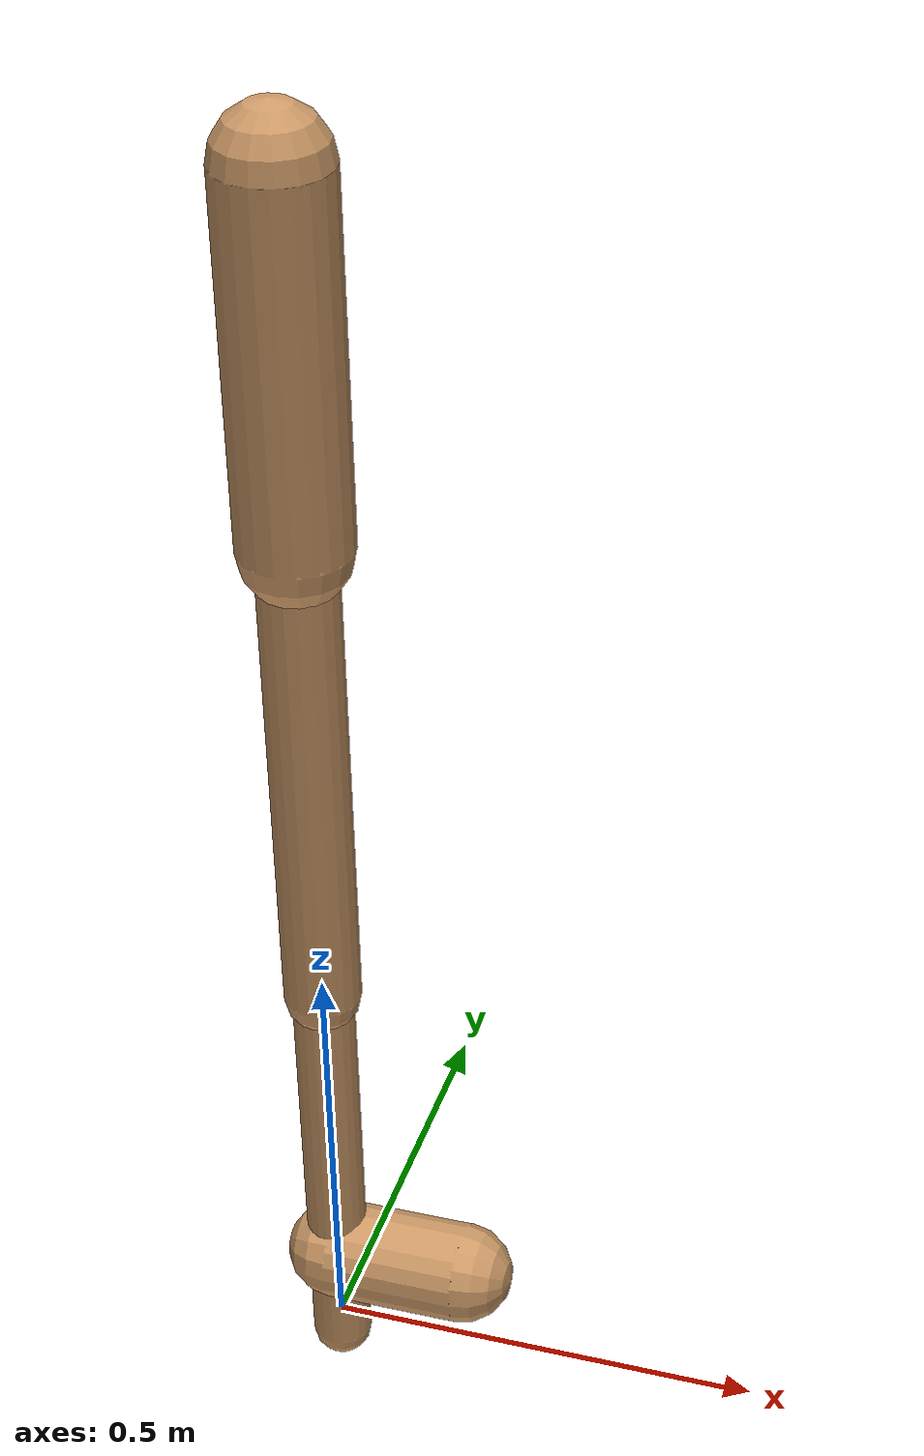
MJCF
<mujoco model="walker2d">
  <compiler angle="degree" coordinate="global" inertiafromgeom="true" />
  <default>
    <joint armature="0.01" damping=".1" limited="true" />
    <geom conaffinity="0" condim="3" contype="1" density="1000" friction="0.8 .1 .1" rgba="0.8 0.6 .4 1" />
  </default>
  <option integrator="RK4" timestep="0.002" />
  <worldbody>

    <body name="torso" pos="0 0 0.24039295966909274">
      <joint armature="0" axis="1 0 0" damping="0" limited="false" name="ignorex" pos="0 0 0" stiffness="0" type="slide" />
      <joint armature="0" axis="0 0 1" damping="0" limited="false" name="ignorez" pos="0 0 0" ref="1.25" stiffness="0" type="slide" />
      <joint armature="0" axis="0 1 0" damping="0" limited="false" name="ignorey" pos="0 0 0" stiffness="0" type="hinge" />
      <geom fromto="0 0 1.45 0 0 1.05" name="torso_geom" size="0.06089075603854524" type="capsule" />
      <body name="thigh">
        <joint axis="0 -1 0" name="thigh_joint" pos="0 0 1.05" range="-150 0" type="hinge" />
        <geom fromto="0.0 0.0 1.05 0.0 0.0 0.4861296506830613" name="thigh_geom" size="0.042930927711773585" type="capsule" />
        <body name="leg" pos="0.0 0.0 -0.11387034931693868">
          <joint axis="0 -1 0" name="leg_joint" pos="0 0 0.6" range="-150 0" type="hinge" />
          <geom fromto="0.0 0.0 0.6 0.0 0.0 -0.026522610352154058" name="leg_geom" size="0.034344742169418865" type="capsule" />
          <body name="foot" pos="0.0 0.0 -0.12652261035215406">
            <joint axis="0 -1 0" name="foot_joint" pos="0 0 0.1" range="-45 45" type="hinge" />
            <geom fromto="0.0 0.0 0.1 0.15399481386270636 0.0 0.1" name="foot_geom" size="0.05791418385268458" type="capsule" />
          </body>
        </body>
      </body>

      <body name="thigh_left">
        <joint axis="0 -1 0" name="thigh_left_joint" pos="0 0 1.05" range="-150 0" type="hinge" />
        <geom fromto="0.0 0.0 1.05 0.0 0.0 0.4861296506830613" name="thigh_left_geom" rgba=".7 .3 .6 1" size="0.042930927711773585" type="capsule" />
        <body name="leg_left" pos="0.0 0.0 -0.11387034931693868">
          <joint axis="0 -1 0" name="leg_left_joint" pos="0 0 0.6" range="-150 0" type="hinge" />
          <geom fromto="0.0 0.0 0.6 0.0 0.0 -0.026522610352154058" name="leg_left_geom" rgba=".7 .3 .6 1" size="0.034344742169418865" type="capsule" />
          <body name="foot_left" pos="0.0 0.0 -0.12652261035215406">
            <joint axis="0 -1 0" name="foot_left_joint" pos="0 0 0.1" range="-45 45" type="hinge" />
            <geom fromto="0.0 0.0 0.1 0.15399481386270636 0.0 0.1" name="foot_left_geom" rgba=".7 .3 .6 1" size="0.05791418385268458" type="capsule" />
          </body>
        </body>
      </body>
    </body>
  </worldbody>
  <actuator>

    <motor ctrllimited="true" ctrlrange="-1.0 1.0" gear="100" joint="thigh_joint" />
    <motor ctrllimited="true" ctrlrange="-1.0 1.0" gear="100" joint="leg_joint" />
    <motor ctrllimited="true" ctrlrange="-1.0 1.0" gear="100" joint="foot_joint" />
    <motor ctrllimited="true" ctrlrange="-1.0 1.0" gear="100" joint="thigh_left_joint" />
    <motor ctrllimited="true" ctrlrange="-1.0 1.0" gear="100" joint="leg_left_joint" />
    <motor ctrllimited="true" ctrlrange="-1.0 1.0" gear="100" joint="foot_left_joint" />

  </actuator>
</mujoco>
